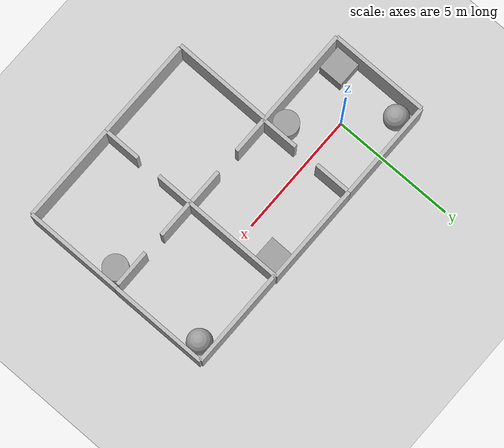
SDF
<sdf version="1.7">
 <world name="default">
  <model name="ground_plane">
   <static>1</static>
   <link name="link">
    <collision name="collision">
     <geometry><plane><normal>0 0 1</normal><size>100 100</size></plane></geometry>
     <surface><friction><ode><mu>100</mu><mu2>50</mu2></ode></friction></surface>
    </collision>
    <visual name="visual">
     <cast_shadows>0</cast_shadows>
     <geometry><plane><normal>0 0 1</normal><size>100 100</size></plane></geometry>
     <material>
      <script><uri>file://media/materials/scripts/gazebo.material</uri><name>Gazebo/Grey</name></script>
     </material>
    </visual>
   </link>
  </model>
  <light name="sun" type="directional">
   <pose>0 0 10 0 -0 0</pose>
   <diffuse>0.8 0.8 0.8 1</diffuse>
   <specular>0.2 0.2 0.2 1</specular>
   <attenuation>
    <range>1000</range>
    <constant>0.9</constant>
    <linear>0.01</linear>
    <quadratic>0.001</quadratic>
   </attenuation>
   <direction>-0.5 0.1 -0.9</direction>
   <spot><inner_angle>0</inner_angle><outer_angle>0</outer_angle><falloff>0</falloff></spot>
  </light>
  <scene><shadows>0</shadows><ambient>0.4 0.4 0.4 1</ambient><background>0.7 0.7 0.7 1</background></scene>
  <physics type="ode">
   <real_time_update_rate>1000</real_time_update_rate>
   <max_step_size>0.001</max_step_size>
   <real_time_factor>1</real_time_factor>
   <ode>
    <solver>
     <type>quick</type>
     <iters>150</iters>
     <precon_iters>0</precon_iters>
     <sor>1.4</sor>
     <use_dynamic_moi_rescaling>1</use_dynamic_moi_rescaling>
    </solver>
    <constraints>
     <cfm>1e-05</cfm>
     <erp>0.2</erp>
     <contact_max_correcting_vel>2000</contact_max_correcting_vel>
     <contact_surface_layer>0.01</contact_surface_layer>
    </constraints>
   </ode>
  </physics>
  <model name="R1_wall_north">
   <static>1</static>
   <pose>0 2 1 0 -0 0</pose>
   <link name="wall">
    <visual name="v"><geometry><box><size>4 0.15 2</size></box></geometry></visual>
    <collision name="c"><geometry><box><size>4 0.15 2</size></box></geometry></collision>
   </link>
  </model>
  <model name="R1_wall_south">
   <static>1</static>
   <pose>0 -2 1 0 -0 0</pose>
   <link name="wall">
    <visual name="v"><geometry><box><size>4 0.15 2</size></box></geometry></visual>
    <collision name="c"><geometry><box><size>4 0.15 2</size></box></geometry></collision>
   </link>
  </model>
  <model name="R1_wall_west">
   <static>1</static>
   <pose>-2 0 1 0 -0 1.5708</pose>
   <link name="wall">
    <visual name="v"><geometry><box><size>4 0.15 2</size></box></geometry></visual>
    <collision name="c"><geometry><box><size>4 0.15 2</size></box></geometry></collision>
   </link>
  </model>
  <model name="R1_wall_east_top">
   <static>1</static>
   <pose>2 1.25 1 0 -0 1.5708</pose>
   <link name="wall">
    <visual name="v"><geometry><box><size>1.5 0.15 2</size></box></geometry></visual>
    <collision name="c"><geometry><box><size>1.5 0.15 2</size></box></geometry></collision>
   </link>
  </model>
  <model name="R1_wall_east_bottom">
   <static>1</static>
   <pose>2 -1.25 1 0 -0 1.5708</pose>
   <link name="wall">
    <visual name="v"><geometry><box><size>1.5 0.15 2</size></box></geometry></visual>
    <collision name="c"><geometry><box><size>1.5 0.15 2</size></box></geometry></collision>
   </link>
  </model>
  <model name="R2_wall_north">
   <static>1</static>
   <pose>4 2 1 0 -0 0</pose>
   <link name="wall">
    <visual name="v"><geometry><box><size>4 0.15 2</size></box></geometry></visual>
    <collision name="c"><geometry><box><size>4 0.15 2</size></box></geometry></collision>
   </link>
  </model>
  <model name="R2_wall_south_left">
   <static>1</static>
   <pose>2.75 -2 1 0 -0 0</pose>
   <link name="wall">
    <visual name="v"><geometry><box><size>1.5 0.15 2</size></box></geometry></visual>
    <collision name="c"><geometry><box><size>1.5 0.15 2</size></box></geometry></collision>
   </link>
  </model>
  <model name="R2_wall_south_right">
   <static>1</static>
   <pose>5.25 -2 1 0 -0 0</pose>
   <link name="wall">
    <visual name="v"><geometry><box><size>1.5 0.15 2</size></box></geometry></visual>
    <collision name="c"><geometry><box><size>1.5 0.15 2</size></box></geometry></collision>
   </link>
  </model>
  <model name="R2_wall_east">
   <static>1</static>
   <pose>6 0 1 0 -0 1.5708</pose>
   <link name="wall">
    <visual name="v"><geometry><box><size>4 0.15 2</size></box></geometry></visual>
    <collision name="c"><geometry><box><size>4 0.15 2</size></box></geometry></collision>
   </link>
  </model>
  <model name="R3_wall_south">
   <static>1</static>
   <pose>1.92652 -4.0377 1 0 0 -1.57982</pose>
   <link name="wall">
    <visual name="v"><geometry><box><size>4 0.15 2</size></box></geometry></visual>
    <collision name="c"><geometry><box><size>4 0.15 2</size></box></geometry></collision>
   </link>
  </model>
  <model name="R3_wall_west">
   <static>1</static>
   <pose>10.0087 -0.034554 1 0 -0 1.5708</pose>
   <link name="wall">
    <visual name="v"><geometry><box><size>4 0.15 2</size></box></geometry></visual>
    <collision name="c"><geometry><box><size>4 0.15 2</size></box></geometry></collision>
   </link>
  </model>
  <model name="R3_wall_east_top">
   <static>1</static>
   <pose>6.79302 -2.03052 1 0 0 -0.000149</pose>
   <link name="wall">
    <visual name="v"><geometry><box><size>1.5 0.15 2</size></box></geometry></visual>
    <collision name="c"><geometry><box><size>1.5 0.15 2</size></box></geometry></collision>
   </link>
  </model>
  <model name="R3_wall_east_bottom">
   <static>1</static>
   <pose>9.14543 -2.04558 1 0 -0 0.003708</pose>
   <link name="wall">
    <visual name="v"><geometry><box><size>1.5 0.15 2</size></box></geometry></visual>
    <collision name="c"><geometry><box><size>1.5 0.15 2</size></box></geometry></collision>
   </link>
  </model>
  <model name="R4_wall_east_top">
   <static>1</static>
   <pose>6 -2.75 1 0 -0 1.5708</pose>
   <link name="wall">
    <visual name="v"><geometry><box><size>1.5 0.15 2</size></box></geometry></visual>
    <collision name="c"><geometry><box><size>1.5 0.15 2</size></box></geometry></collision>
   </link>
  </model>
  <model name="R4_wall_east_bottom">
   <static>1</static>
   <pose>6 -5.25 1 0 -0 1.5708</pose>
   <link name="wall">
    <visual name="v"><geometry><box><size>1.5 0.15 2</size></box></geometry></visual>
    <collision name="c"><geometry><box><size>1.5 0.15 2</size></box></geometry></collision>
   </link>
  </model>
  <model name="R4_wall_south">
   <static>1</static>
   <pose>4 -6 1 0 -0 0</pose>
   <link name="wall">
    <visual name="v"><geometry><box><size>4 0.15 2</size></box></geometry></visual>
    <collision name="c"><geometry><box><size>4 0.15 2</size></box></geometry></collision>
   </link>
  </model>
  <model name="R5_wall_east">
   <static>1</static>
   <pose>10 -4 1 0 -0 1.5708</pose>
   <link name="wall">
    <visual name="v"><geometry><box><size>4 0.15 2</size></box></geometry></visual>
    <collision name="c"><geometry><box><size>4 0.15 2</size></box></geometry></collision>
   </link>
  </model>
  <model name="R5_wall_south">
   <static>1</static>
   <pose>8 -6 1 0 -0 0</pose>
   <link name="wall">
    <visual name="v"><geometry><box><size>4 0.15 2</size></box></geometry></visual>
    <collision name="c"><geometry><box><size>4 0.15 2</size></box></geometry></collision>
   </link>
  </model>
  <model name="R5_wall_north">
   <static>1</static>
   <pose>8 1.95752 1 0 -0 0</pose>
   <link name="wall">
    <visual name="v"><geometry><box><size>4 0.15 2</size></box></geometry></visual>
    <collision name="c"><geometry><box><size>4 0.15 2</size></box></geometry></collision>
   </link>
  </model>
  <gravity>0 0 -9.8</gravity>
  <magnetic_field>6e-06 2.3e-05 -4.2e-05</magnetic_field>
  <atmosphere type="adiabatic"/>
  <audio><device>default</device></audio>
  <spherical_coordinates>
   <surface_model>EARTH_WGS84</surface_model>
   <latitude_deg>0</latitude_deg>
   <longitude_deg>0</longitude_deg>
   <elevation>0</elevation>
   <heading_deg>0</heading_deg>
  </spherical_coordinates>
  <model name="unit_sphere">
   <pose>-1.42296 1.42494 0.5 0.171087 0.096972 -0.185387</pose>
   <link name="link">
    <inertial>
     <mass>1</mass>
     <inertia><ixx>0.1</ixx><ixy>0</ixy><ixz>0</ixz><iyy>0.1</iyy><iyz>0</iyz><izz>0.1</izz></inertia>
    </inertial>
    <collision name="collision"><geometry><sphere><radius>0.5</radius></sphere></geometry></collision>
    <visual name="visual">
     <geometry><sphere><radius>0.5</radius></sphere></geometry>
     <material>
      <script><name>Gazebo/Grey</name><uri>file://media/materials/scripts/gazebo.material</uri></script>
     </material>
    </visual>
   </link>
  </model>
  <model name="unit_sphere_0">
   <pose>9.43368 1.38252 0.5 0.11608 -0.039051 0.154486</pose>
   <link name="link">
    <inertial>
     <mass>1</mass>
     <inertia><ixx>0.1</ixx><ixy>0</ixy><ixz>0</ixz><iyy>0.1</iyy><iyz>0</iyz><izz>0.1</izz></inertia>
    </inertial>
    <collision name="collision"><geometry><sphere><radius>0.5</radius></sphere></geometry></collision>
    <visual name="visual">
     <geometry><sphere><radius>0.5</radius></sphere></geometry>
     <material>
      <script><name>Gazebo/Grey</name><uri>file://media/materials/scripts/gazebo.material</uri></script>
     </material>
    </visual>
   </link>
  </model>
  <model name="unit_box">
   <pose>5.41946 1.41992 0.5 0 0 -0.009961</pose>
   <link name="link">
    <inertial>
     <mass>1</mass>
     <inertia>
      <ixx>0.166667</ixx>
      <ixy>0</ixy>
      <ixz>0</ixz>
      <iyy>0.166667</iyy>
      <iyz>0</iyz>
      <izz>0.166667</izz>
     </inertia>
    </inertial>
    <collision name="collision"><geometry><box><size>1 1 1</size></box></geometry></collision>
    <visual name="visual">
     <geometry><box><size>1 1 1</size></box></geometry>
     <material>
      <script><name>Gazebo/Grey</name><uri>file://media/materials/scripts/gazebo.material</uri></script>
     </material>
    </visual>
   </link>
  </model>
  <model name="unit_box_0">
   <pose>-1.42499 -1.33683 0.5 0 -0 1e-06</pose>
   <link name="link">
    <inertial>
     <mass>1</mass>
     <inertia>
      <ixx>0.166667</ixx>
      <ixy>0</ixy>
      <ixz>0</ixz>
      <iyy>0.166667</iyy>
      <iyz>0</iyz>
      <izz>0.166667</izz>
     </inertia>
    </inertial>
    <collision name="collision"><geometry><box><size>1 1 1</size></box></geometry></collision>
    <visual name="visual">
     <geometry><box><size>1 1 1</size></box></geometry>
     <material>
      <script><name>Gazebo/Grey</name><uri>file://media/materials/scripts/gazebo.material</uri></script>
     </material>
    </visual>
   </link>
  </model>
  <model name="unit_cylinder">
   <pose>1.425 -1.425 0.5 0 -0 0.01901</pose>
   <link name="link">
    <inertial>
     <mass>1</mass>
     <inertia><ixx>0.145833</ixx><ixy>0</ixy><ixz>0</ixz><iyy>0.145833</iyy><iyz>0</iyz><izz>0.125</izz></inertia>
    </inertial>
    <collision name="collision">
     <geometry><cylinder><radius>0.5</radius><length>1</length></cylinder></geometry>
    </collision>
    <visual name="visual">
     <geometry><cylinder><radius>0.5</radius><length>1</length></cylinder></geometry>
     <material>
      <script><name>Gazebo/Grey</name><uri>file://media/materials/scripts/gazebo.material</uri></script>
     </material>
    </visual>
   </link>
  </model>
  <model name="unit_cylinder_0">
   <pose>9.42499 -2.61955 0.499993 -0 -2e-06 0.052202</pose>
   <link name="link">
    <inertial>
     <mass>1</mass>
     <inertia><ixx>0.145833</ixx><ixy>0</ixy><ixz>0</ixz><iyy>0.145833</iyy><iyz>0</iyz><izz>0.125</izz></inertia>
    </inertial>
    <collision name="collision">
     <geometry><cylinder><radius>0.5</radius><length>1</length></cylinder></geometry>
    </collision>
    <visual name="visual">
     <geometry><cylinder><radius>0.5</radius><length>1</length></cylinder></geometry>
     <material>
      <script><name>Gazebo/Grey</name><uri>file://media/materials/scripts/gazebo.material</uri></script>
     </material>
    </visual>
   </link>
  </model>
 </world>
</sdf>
